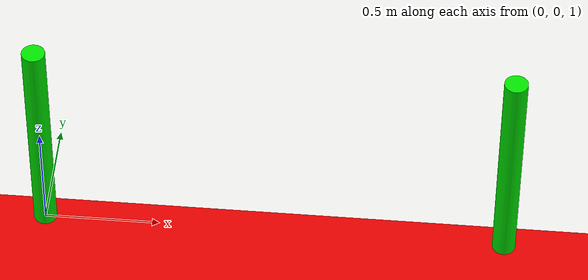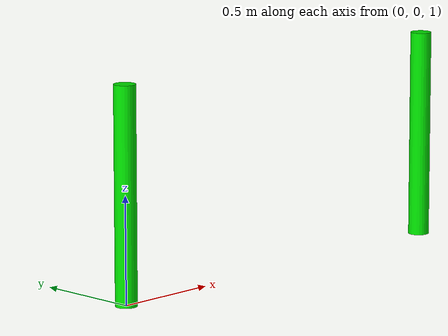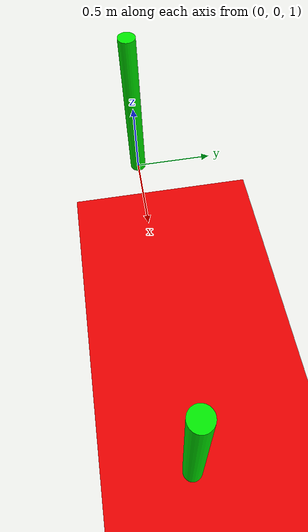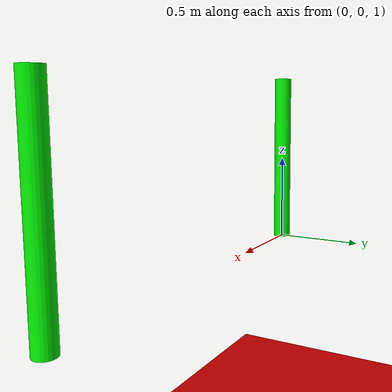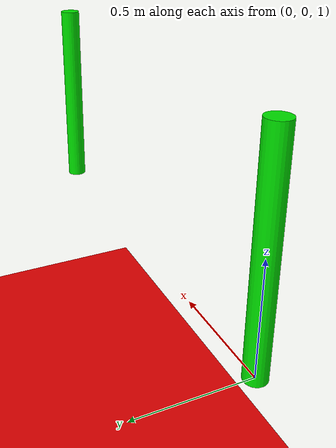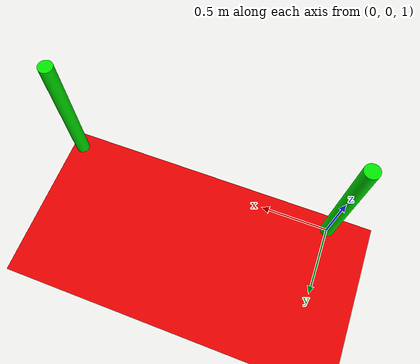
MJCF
<mujoco>
	<option>
		<flag sensornoise="enable"/>
	</option>
	<worldbody>

    <light diffuse=".5 .5 .5" pos="0 0 7" dir="0 0 -1"/>
		<geom type="plane" size="5 5 0.1" rgba=".9 0 0 1"/>
		<body pos="0 0 1.5" euler = "0 0 0 " name = "body1">
			<joint name = "pin" type="hinge" axis = "0 -1 0" pos = "0 0 0.5"/>
			<inertial pos = "0 0 -0.5" mass = "1" diaginertia = "1 1 1"/>
			<geom type="cylinder" size=".05 .5" rgba="0 .9 0 1"/>

		</body>
		<body pos="2 0 1.5" euler = "0 0 0 " name = "body2">
			<joint name = "pin2" type="hinge" axis = "0 -1 0" pos = "0 0 0.5"/>
			<inertial pos = "0 0 -0.5" mass = "1" diaginertia = "1 1 1"/>
			<geom type="cylinder" size=".05 .5" rgba="0 .9 0 1" mass="1"/>
		</body>

	</worldbody>
</mujoco>
